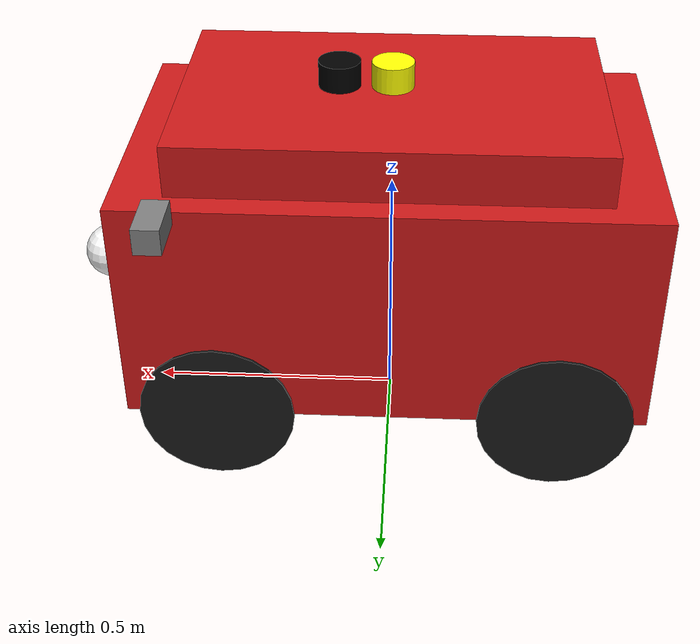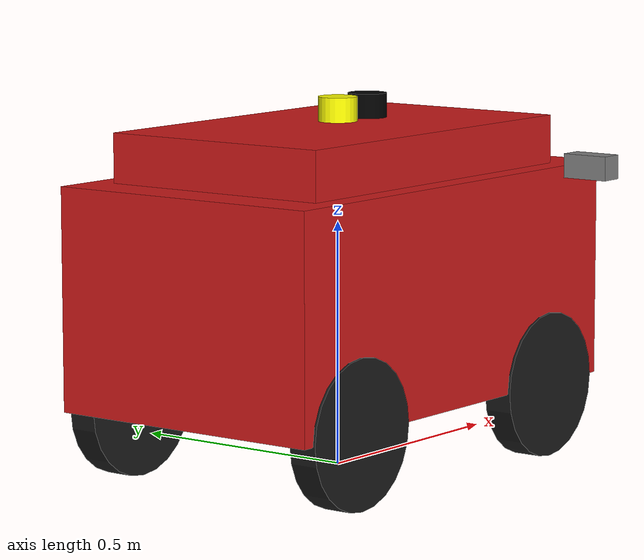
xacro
<?xml version="1.0"?>
<robot name="ttbot" xmlns:xacro="http://www.ros.org/wiki/xacro">

  <!-- Arg dùng cho Gazebo / Ignition -->
  <xacro:arg name="is_ignition" default="true"/>

  <!-- =============== INCLUDE GAZEBO =============== -->
  <xacro:include filename="$(find ttbot_description)/urdf/ttbot_gazebo.xacro" />

  <!-- ================= CONSTANTS ================= -->
  <xacro:property name="wheel_radius" value="0.15"/>        <!-- bán kính bánh xe -->
  <xacro:property name="wheel_width"  value="0.06"/>        <!-- bề dày bánh -->
  <xacro:property name="wheelbase"    value="0.65"/>         <!-- khoảng cách giữa 2 trục -->
  <xacro:property name="track_width"  value="0.55"/>        <!-- khoảng cách 2 bánh cùng trục -->
  <xacro:property name="chassis_length" value="1.0"/>       <!-- chiều dài thân -->
  <xacro:property name="chassis_width"  value="0.6"/>       <!-- chiều rộng thân -->
  <xacro:property name="chassis_height" value="0.45"/>      <!-- chiều cao thân -->

  <!-- ================= HELPER MACROS ================= -->
  <xacro:macro name="inertial_cyl" params="mass r l">
    <inertial>
      <mass value="${mass}"/>
      <origin xyz="0 0 0" rpy="0 0 0"/>
      <inertia ixx="${(1.0/2.0)*mass*r*r}"
               iyy="${(1.0/12.0)*mass*(3*r*r + l*l)}"
               izz="${(1.0/12.0)*mass*(3*r*r + l*l)}"
               ixy="0" ixz="0" iyz="0"/>
    </inertial>
  </xacro:macro>

  <!-- ================= BASE LINK ================= -->
  <link name="base_link">
    <!-- Thân chính (visual) -->
    <visual>
      <geometry>
        <box size="${chassis_length} ${chassis_width} ${chassis_height}"/>
      </geometry>
      <!-- thân trên mặt đất -->
      <origin xyz="0 0 ${wheel_radius + 0.5 * chassis_height}" rpy="0 0 0"/>
      <material name="red"><color rgba="0.8 0.1 0.1 1.0"/></material>
    </visual>

    <!-- Mui xe -->
    <visual>
      <origin xyz="0 0 ${wheel_radius + chassis_height}" rpy="0 0 0"/>
      <geometry><box size="0.8 0.5 0.2"/></geometry>
      <material name="darkred"><color rgba="0.8 0.1 0.1 1.0"/></material>
    </visual>

    <!-- Gương hai bên -->
    <visual>
      <origin xyz="0.4 ${0.5*chassis_width + 0.05} ${wheel_radius + chassis_height}"/>
      <geometry><box size="0.05 0.1 0.05"/></geometry>
      <material name="gray"><color rgba="0.5 0.5 0.5 1"/></material>
    </visual>
    <visual>
      <origin xyz="0.4 ${-0.5*chassis_width - 0.05} ${wheel_radius + chassis_height}"/>
      <geometry><box size="0.05 0.1 0.05"/></geometry>
      <material name="gray"><color rgba="0.5 0.5 0.5 1"/></material>
    </visual>

    <!-- Đèn pha -->
    <visual>
      <origin xyz="${0.5*chassis_length + 0.03} ${0.25*chassis_width} ${wheel_radius + 0.6*chassis_height}"/>
      <geometry><sphere radius="0.05"/></geometry>
      <material name="white"><color rgba="1 1 1 1"/></material>
    </visual>
    <visual>
      <origin xyz="${0.5*chassis_length + 0.03} ${-0.25*chassis_width} ${wheel_radius + 0.6*chassis_height}"/>
      <geometry><sphere radius="0.05"/></geometry>
      <material name="white"><color rgba="1 1 1 1"/></material>
    </visual>

    <!-- COLLISION thân -->
    <collision>
      <origin xyz="0 0 ${wheel_radius + 0.5 * chassis_height}" rpy="0 0 0"/>
      <geometry>
        <box size="${chassis_length} ${chassis_width} ${chassis_height}"/>
      </geometry>
    </collision>

    <!-- INERTIAL thân -->
    <inertial>
      <origin xyz="0 0 ${wheel_radius + 0.5 * chassis_height}" rpy="0 0 0"/>
      <mass value="15.0"/>
      <inertia
        ixx="${(1.0/12.0)*15.0*(chassis_width*chassis_width + chassis_height*chassis_height)}"
        iyy="${(1.0/12.0)*15.0*(chassis_length*chassis_length + chassis_height*chassis_height)}"
        izz="${(1.0/12.0)*15.0*(chassis_length*chassis_length + chassis_width*chassis_width)}"
        ixy="0" ixz="0" iyz="0"/>
    </inertial>
  </link>

  <!-- ================= WHEEL MACRO ================= -->
  <xacro:macro name="wheel_link" params="name">
    <link name="${name}">
      <visual>
        <origin rpy="1.5708 0 0"/>
        <geometry><cylinder radius="${wheel_radius}" length="${wheel_width}"/></geometry>
        <material name="black"><color rgba="0.1 0.1 0.1 1.0"/></material>
      </visual>
      <collision>
        <origin rpy="1.5708 0 0"/>
        <geometry><cylinder radius="${wheel_radius}" length="${wheel_width}"/></geometry>
      </collision>
      <xacro:inertial_cyl mass="1.0" r="${wheel_radius}" l="${wheel_width}"/>
    </link>
  </xacro:macro>

  <!-- ================= WHEEL + STEERING LINKS ================= -->

  <!-- Link trung gian cho lái -->
  <!-- Link trung gian cho lái - phải có collision + inertial -->
  <link name="front_left_steering_link">
    <collision>
      <origin xyz="0 0 0" rpy="0 0 0"/>
      <geometry>
        <box size="0.01 0.01 0.01"/>
      </geometry>
    </collision>
    <inertial>
      <origin xyz="0 0 0" rpy="0 0 0"/>
      <mass value="0.01"/>
      <inertia
        ixx="1e-6" iyy="1e-6" izz="1e-6"
        ixy="0" ixz="0" iyz="0"/>
    </inertial>
  </link>

  <link name="front_right_steering_link">
    <collision>
      <origin xyz="0 0 0" rpy="0 0 0"/>
      <geometry>
        <box size="0.01 0.01 0.01"/>
      </geometry>
    </collision>
    <inertial>
      <origin xyz="0 0 0" rpy="0 0 0"/>
      <mass value="0.01"/>
      <inertia
        ixx="1e-6" iyy="1e-6" izz="1e-6"
        ixy="0" ixz="0" iyz="0"/>
    </inertial>
  </link>

  <!-- Bánh -->
  <xacro:wheel_link name="front_left_wheel"/>
  <xacro:wheel_link name="front_right_wheel"/>
  <xacro:wheel_link name="rear_left_wheel"/>
  <xacro:wheel_link name="rear_right_wheel"/>

  <!-- ================= JOINTS ================= -->

  <!-- FRONT STEERING JOINTS (Ackermann) -->
  <joint name="front_left_steering_joint" type="revolute">
    <parent link="base_link"/>
    <child link="front_left_steering_link"/>
    <origin xyz="${0.5*wheelbase} ${0.5*track_width} ${wheel_radius}" rpy="0 0 0"/>
    <axis xyz="0 0 1"/>
    <limit lower="-0.5236" upper="0.5236" effort="20" velocity="1.0"/>
  </joint>

  <joint name="front_right_steering_joint" type="revolute">
    <parent link="base_link"/>
    <child link="front_right_steering_link"/>
    <origin xyz="${0.5*wheelbase} ${-0.5*track_width} ${wheel_radius}" rpy="0 0 0"/>
    <axis xyz="0 0 1"/>
    <limit lower="-0.5236" upper="0.5236" effort="20" velocity="1.0"/>
    <mimic joint="front_left_steering_joint" multiplier="1.0"/>
  </joint>

  <!-- STEERING_LINK -> WHEEL : quay bánh quanh trục Y -->
  <joint name="front_left_wheel_joint" type="continuous">
    <parent link="front_left_steering_link"/>
    <child link="front_left_wheel"/>
    <origin xyz="0 0 0" rpy="0 0 0"/>
    <axis xyz="0 1 0"/>
  </joint>

  <joint name="front_right_wheel_joint" type="continuous">
    <parent link="front_right_steering_link"/>
    <child link="front_right_wheel"/>
    <origin xyz="0 0 0" rpy="0 0 0"/>
    <axis xyz="0 1 0"/>
  </joint>

  <!-- REAR DRIVE JOINTS (motor) -->
  <joint name="rear_left_wheel_joint" type="continuous">
    <parent link="base_link"/>
    <child link="rear_left_wheel"/>
    <origin xyz="${-0.5*wheelbase} ${0.5*track_width} ${wheel_radius}" rpy="0 0 0"/>
    <axis xyz="0 1 0"/>
  </joint>

  <joint name="rear_right_wheel_joint" type="continuous">
    <parent link="base_link"/>
    <child link="rear_right_wheel"/>
    <origin xyz="${-0.5*wheelbase} ${-0.5*track_width} ${wheel_radius}" rpy="0 0 0"/>
    <axis xyz="0 1 0"/>
  </joint>

  <!-- ================= IMU LINK ================= -->
  <link name="imu_link">
    <!-- Hình trụ nhỏ giống tụ/IMU -->
    <visual>
      <origin xyz="0 0 0" rpy="0 0 0"/>
      <geometry>
        <!-- Bán kính ~3cm, cao ~6cm -->
        <cylinder radius="0.04" length="0.05"/>
      </geometry>
      <material name="imu_gray">
        <color rgba="1 1 0 1"/>
      </material>
    </visual>

    <collision>
      <origin xyz="0 0 0" rpy="0 0 0"/>
      <geometry>
        <cylinder radius="0.03" length="0.06"/>
      </geometry>
    </collision>

    <inertial>
      <origin xyz="0 0 0" rpy="0 0 0"/>
      <mass value="0.01"/>
      <inertia
        ixx="1e-6" iyy="1e-6" izz="1e-6"
        ixy="0" ixz="0" iyz="0"/>
    </inertial>
  </link>

  <!-- ================= IMU JOINT ================= -->
  <!-- Đặt IMU trên nóc xe, ngay chính giữa -->
  <joint name="imu_joint" type="fixed">
    <parent link="base_link"/>
    <child link="imu_link"/>

    <!--
      wheel_radius = 0.15
      chassis_height = 0.25
      Nóc (mui) ~ wheel_radius + chassis_height + 0.1 = 0.5
      Đặt tâm IMU nhô lên thêm ~3cm: +0.13
    -->
    <origin xyz="0 0 ${wheel_radius + chassis_height + 0.13}" rpy="0 0 0"/>
    <axis xyz="0 0 0"/>
  </joint>

  <!-- ================= GPS LINK ================= -->
  <link name="gps_link">
    <!-- Hình trụ nhỏ màu đen -->
    <visual>
      <origin xyz="0 0 0" rpy="0 0 0"/>
      <geometry>
        <!-- Bán kính / chiều cao tương tự IMU -->
        <cylinder radius="0.04" length="0.05"/>
      </geometry>
      <material name="gps_black">
        <color rgba="0 0 0 1"/> <!-- Màu đen -->
      </material>
    </visual>

    <collision>
      <origin xyz="0 0 0" rpy="0 0 0"/>
      <geometry>
        <cylinder radius="0.03" length="0.06"/>
      </geometry>
    </collision>

    <inertial>
      <origin xyz="0 0 0" rpy="0 0 0"/>
      <mass value="0.01"/>
      <inertia
        ixx="1e-6" iyy="1e-6" izz="1e-6"
        ixy="0" ixz="0" iyz="0"/>
    </inertial>
  </link>

  <!-- ================= GPS JOINT ================= -->
  <!-- Đặt GPS trên nóc xe, lệch nhẹ về phía trước so với IMU -->
  <joint name="gps_joint" type="fixed">
    <parent link="base_link"/>
    <child link="gps_link"/>

    <!--
      IMU đang dùng:
        z = wheel_radius + chassis_height + 0.13
      GPS: cùng độ cao, lệch trục x về phía trước 10cm
    -->
    <origin xyz="0.1 0 ${wheel_radius + chassis_height + 0.13}" rpy="0 0 0"/>
    <axis xyz="0 0 0"/>
  </joint>

  <!-- ================= ROS2_CONTROL ================= -->

  <ros2_control name="ttbot_system" type="system">
    <hardware>
      <xacro:if value="$(arg is_ignition)">
        <plugin>ign_ros2_control/IgnitionSystem</plugin>
      </xacro:if>
      <xacro:unless value="$(arg is_ignition)">
        <plugin>gz_ros2_control/GazeboSystem</plugin>
      </xacro:unless>
    </hardware>

    <!-- Bánh sau: điều khiển velocity -->
    <joint name="rear_left_wheel_joint">
      <command_interface name="velocity"/>
      <state_interface name="position"/>
      <state_interface name="velocity"/>
    </joint>

    <joint name="rear_right_wheel_joint">
      <command_interface name="velocity"/>
      <state_interface name="position"/>
      <state_interface name="velocity"/>
    </joint>

    <!-- Góc lái: điều khiển position -->
    <joint name="front_left_steering_joint">
      <command_interface name="position"/>
      <state_interface name="position"/>
      <state_interface name="velocity"/>
    </joint>

    <joint name="front_right_steering_joint">
      <command_interface name="position"/>
      <state_interface name="position"/>
      <state_interface name="velocity"/>
    </joint>
  </ros2_control>

  <!-- ================= GAZEBO MACRO ================= -->
  <xacro:ttbot_gazebo/>

</robot>
